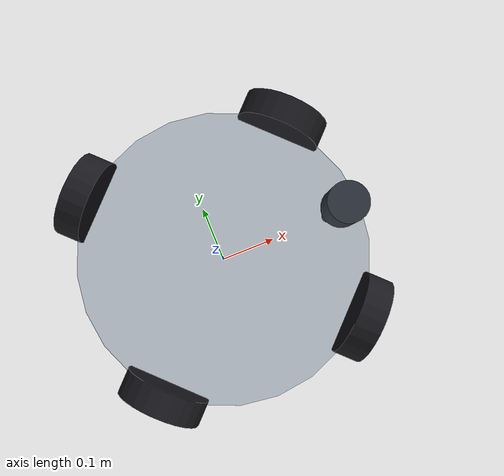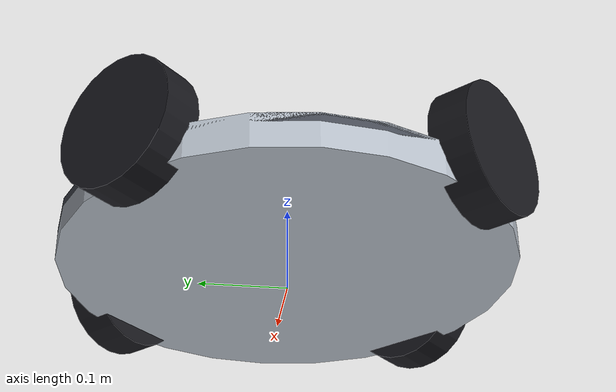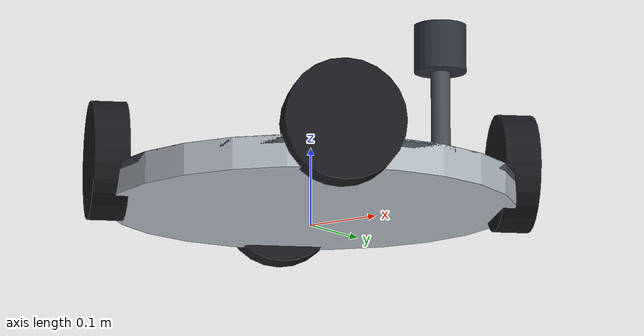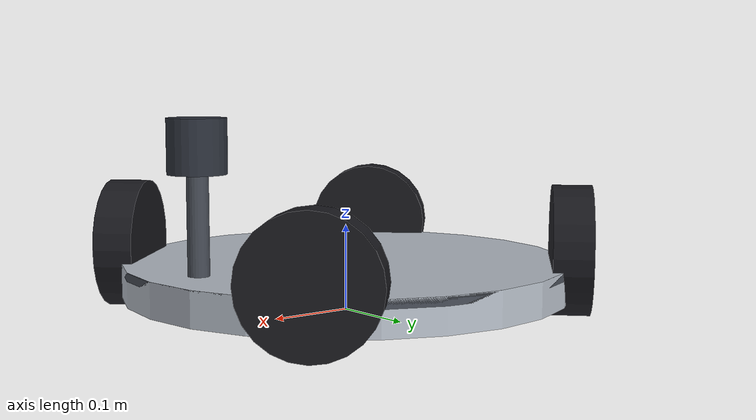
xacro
<?xml version="1.0"?>
<robot name="omni_round" xmlns:xacro="http://www.ros.org/wiki/xacro">

  <xacro:property name="body_radius" value="0.26"/>
  <!-- Chassis plate, 0.02 - 0.06 m above the floor.  Anything taller would
       enter the lidar's 7 deg downward view (see the header note), so the
       plate is seen edge-on and the sensor clears it. -->
  <xacro:property name="body_top_z" value="0.06"/>
  <xacro:property name="body_bottom_z" value="0.02"/>
  <xacro:property name="wheel_radius" value="0.075"/>
  <xacro:property name="wheel_width" value="0.045"/>
  <xacro:property name="wheel_mount_radius" value="0.26"/>
  <!-- Derived, in base_link coordinates (base_link sits wheel_radius above
       the floor). -->
  <xacro:property name="body_height" value="${body_top_z - body_bottom_z}"/>
  <xacro:property name="body_centre_z" value="${(body_top_z + body_bottom_z) / 2 - wheel_radius}"/>

  <xacro:property name="lidar_mount_radius" value="0.20"/>
  <xacro:property name="lidar_mount_angle" value="0.0"/>
  <xacro:property name="lidar_x" value="${lidar_mount_radius * cos(lidar_mount_angle)}"/>
  <xacro:property name="lidar_y" value="${lidar_mount_radius * sin(lidar_mount_angle)}"/>
  <xacro:property name="lidar_radius" value="0.0325"/>
  <xacro:property name="lidar_height" value="0.06"/>
  <xacro:property name="lidar_yaw" value="0.0"/>
  <xacro:property name="lidar_z" value="0.200"/>

  <material name="body_gray"><color rgba="0.72 0.75 0.79 1.0"/></material>
  <material name="body_dark"><color rgba="0.28 0.30 0.34 1.0"/></material>
  <material name="wheel_dark"><color rgba="0.10 0.10 0.12 1.0"/></material>
  <material name="lidar_dark"><color rgba="0.18 0.20 0.24 1.0"/></material>

  <!-- ===== ground projection ===== -->
  <link name="base_footprint"/>

  <joint name="base_footprint_to_base_link" type="fixed">
    <parent link="base_footprint"/>
    <child link="base_link"/>
    <origin xyz="0 0 ${wheel_radius}" rpy="0 0 0"/>
  </joint>

  <!-- ===== chassis body, base_link at the bottom circle centre ===== -->
  <link name="base_link">
    <visual>
      <origin xyz="0 0 ${body_centre_z}" rpy="0 0 0"/>
      <geometry><cylinder radius="${body_radius}" length="${body_height}"/></geometry>
      <material name="body_gray"/>
    </visual>
    <visual>
      <!-- top deck, slightly darker so the roof plane is readable -->
      <origin xyz="0 0 ${body_top_z - 0.005 - wheel_radius}" rpy="0 0 0"/>
      <geometry><cylinder radius="${body_radius}" length="0.01"/></geometry>
      <material name="body_dark"/>
    </visual>
    <visual>
      <origin xyz="${lidar_x} ${lidar_y}
                   ${(body_top_z + lidar_z - lidar_height / 2) / 2 - wheel_radius}"
              rpy="0 0 0"/>
      <geometry><cylinder radius="0.012"
                          length="${lidar_z - lidar_height / 2 - body_top_z}"/></geometry>
      <material name="body_dark"/>
    </visual>
    <collision>
      <origin xyz="0 0 ${body_centre_z}" rpy="0 0 0"/>
      <geometry><cylinder radius="${body_radius}" length="${body_height}"/></geometry>
    </collision>
    <inertial>
      <!-- 15 kg plate, r = 0.26 m, h = 0.04 m -->
      <mass value="15.0"/>
      <inertia ixx="0.256" ixy="0" ixz="0"
               iyy="0.256" iyz="0"
               izz="0.507"/>
    </inertial>
  </link>

  <!-- ===== compatibility frames required by the Nav2 / localization stack ===== -->
  <link name="gimbal_yaw"/>
  <joint name="gimbal_yaw_fixed_joint" type="fixed">
    <parent link="base_link"/>
    <child link="gimbal_yaw"/>
    <origin xyz="0 0 0" rpy="0 0 0"/>
  </joint>

  <link name="imu_link"/>
  <joint name="imu_link_joint" type="fixed">
    <parent link="base_link"/>
    <child link="imu_link"/>
    <origin xyz="0 0 0" rpy="0 0 0"/>
  </joint>

  <!-- ===== four omni wheels, axles radial ===== -->
  <xacro:macro name="omni_wheel" params="name angle">
    <link name="${name}">
      <visual>
        <geometry><cylinder radius="${wheel_radius}" length="${wheel_width}"/></geometry>
        <material name="wheel_dark"/>
      </visual>
      <collision>
        <geometry><cylinder radius="${wheel_radius}" length="${wheel_width}"/></geometry>
      </collision>
      <inertial>
        <mass value="0.5"/>
        <inertia ixx="0.00077" ixy="0" ixz="0"
                 iyy="0.00077" iyz="0"
                 izz="0.001406"/>
      </inertial>
    </link>
    <!-- rpy=(0, pi/2, angle) makes the link +z point radially outward, so the
         cylinder axis is the axle and the wheel rolls tangentially. -->
    <joint name="${name}_joint" type="continuous">
      <parent link="base_link"/>
      <child link="${name}"/>
      <origin xyz="${wheel_mount_radius * cos(angle)} ${wheel_mount_radius * sin(angle)} 0"
              rpy="0 ${pi / 2} ${angle}"/>
      <axis xyz="0 0 1"/>
      <limit effort="20.0" velocity="50.0"/>
    </joint>
  </xacro:macro>

  <!-- Joint names match WHEEL_JOINTS in usb_bridge so the firmware's
       serial/joint_states_raw drives these wheels directly. -->
  <xacro:omni_wheel name="wheel_front_left"  angle="${pi / 4}"/>
  <xacro:omni_wheel name="wheel_front_right" angle="${-pi / 4}"/>
  <xacro:omni_wheel name="wheel_back_left"   angle="${3 * pi / 4}"/>
  <xacro:omni_wheel name="wheel_back_right"  angle="${-3 * pi / 4}"/>

  <!-- ===== lidar on the roof ===== -->
  <link name="front_mid360">
    <visual>
      <origin xyz="0 0 0" rpy="0 0 0"/>
      <geometry><cylinder radius="${lidar_radius}" length="${lidar_height}"/></geometry>
      <material name="lidar_dark"/>
    </visual>
    <collision>
      <origin xyz="0 0 0" rpy="0 0 0"/>
      <geometry><cylinder radius="${lidar_radius}" length="${lidar_height}"/></geometry>
    </collision>
    <inertial>
      <mass value="0.3"/>
      <inertia ixx="0.000169" ixy="0" ixz="0"
               iyy="0.000169" iyz="0"
               izz="0.000158"/>
    </inertial>
  </link>

  <!-- The joint origin is the measurement centre, at the calibrated height
       above the ground (`lidar_z`), relative to base_link which sits
       wheel_radius above base_footprint. -->
  <joint name="joint_lidar" type="fixed">
    <parent link="gimbal_yaw"/>
    <child link="front_mid360"/>
    <origin xyz="${lidar_x} ${lidar_y} ${lidar_z - wheel_radius}"
            rpy="0 0 ${lidar_yaw}"/>
  </joint>

</robot>
